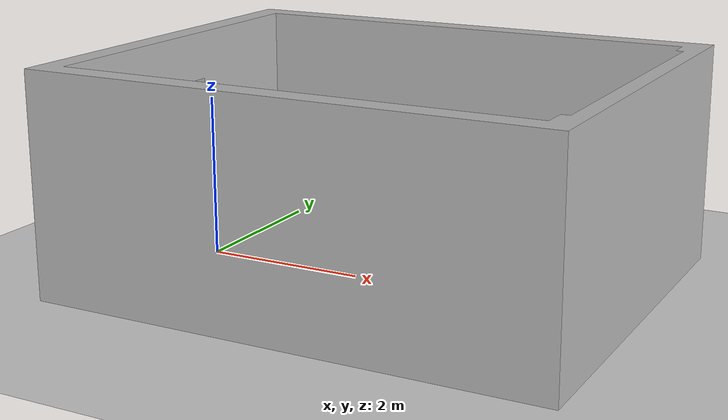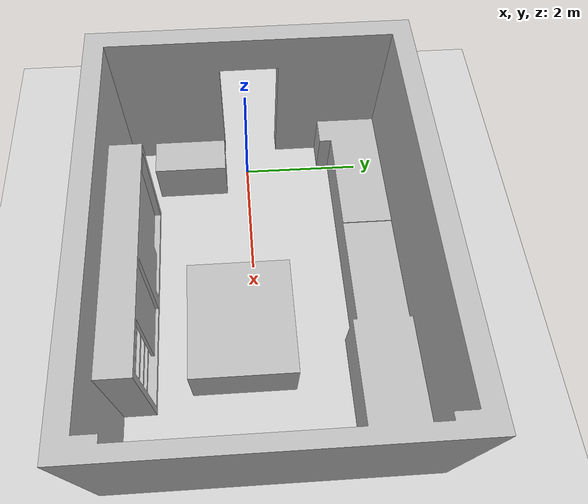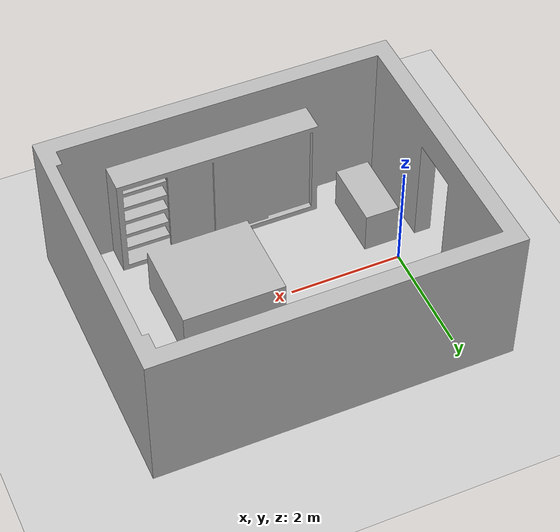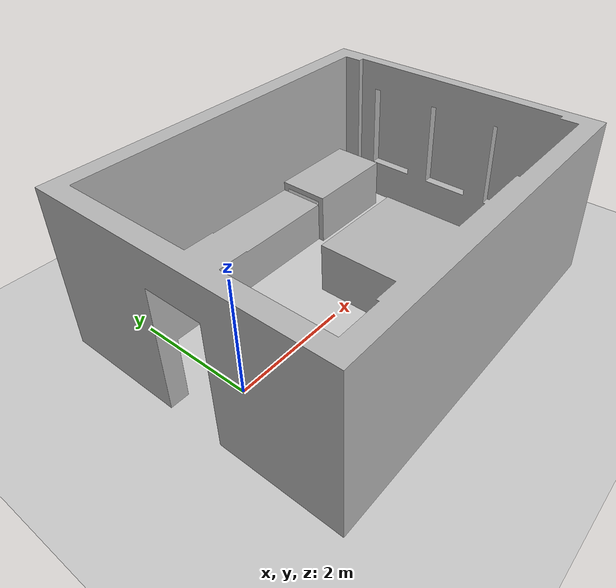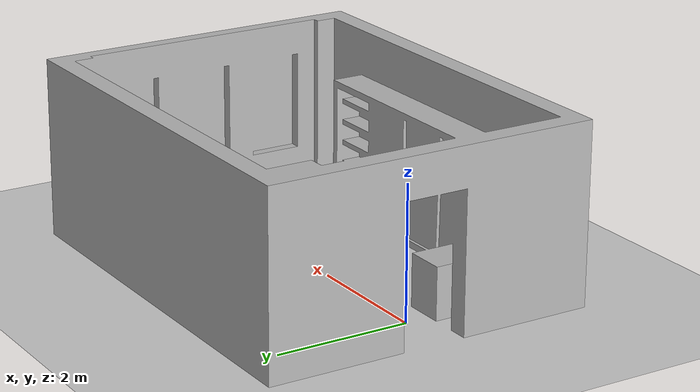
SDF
<?xml version="1.0" ?>
<sdf version="1.7">
  <world name="full_world">

    <!-- Gravità -->
    <gravity>0 0 -9.81</gravity>

    <!-- Luce ambientale -->
    <scene>
      <ambient>0.4 0.4 0.4 1</ambient>
      <background>0.7 0.7 0.7 1</background>
    </scene>

    <model name='ground_plane'>
      <static>true</static>
      <link name='link'>
        <collision name='collision'>
          <geometry>
            <plane>
              <normal>0 0 1</normal>
              <size>100 100</size>
            </plane>
          </geometry>
          <surface>
            <friction>
              <ode/>
            </friction>
            <bounce/>
            <contact/>
          </surface>
        </collision>
        <visual name='visual'>
          <geometry>
            <plane>
              <normal>0 0 1</normal>
              <size>100 100</size>
            </plane>
          </geometry>
          <material>
            <ambient>0.8 0.8 0.8 1</ambient>
            <diffuse>0.8 0.8 0.8 1</diffuse>
            <specular>0.8 0.8 0.8 1</specular>
          </material>
        </visual>
        <pose>0 0 0 0 -0 0</pose>
        <inertial>
          <pose>0 0 0 0 -0 0</pose>
          <mass>1</mass>
          <inertia>
            <ixx>1</ixx>
            <ixy>0</ixy>
            <ixz>0</ixz>
            <iyy>1</iyy>
            <iyz>0</iyz>
            <izz>1</izz>
          </inertia>
        </inertial>
        <enable_wind>false</enable_wind>
      </link>
      <pose>0 0 0 0 -0 0</pose>
      <self_collide>false</self_collide>
    </model>

    <!-- Mesh del mondo -->
    <model name="static_environment">
      <static>true</static>
      <pose>-0.5 2.3 0 0 0 -1.57</pose>
      <link name="link">
        <visual name="visual">
          <geometry>
            <mesh>
              <uri>file:///home/simenza/dev_ws/src/cleanbit_simulate/meshes/LAB.stl</uri>
            </mesh>
          </geometry>
        </visual>
        <collision name="collision">
          <geometry>
            <mesh>
              <uri>file:///home/simenza/dev_ws/src/cleanbit_simulate/meshes/LAB.stl</uri>
            </mesh>
          </geometry>
        </collision>
      </link>
    </model>

  </world>
</sdf>
